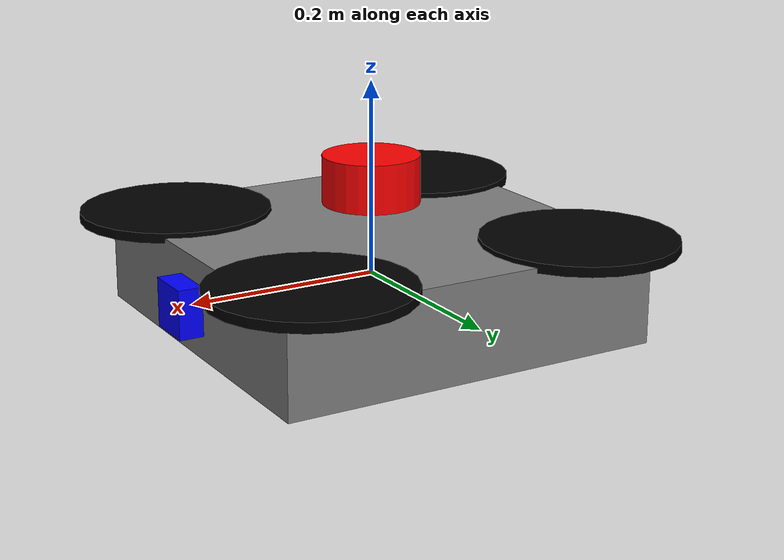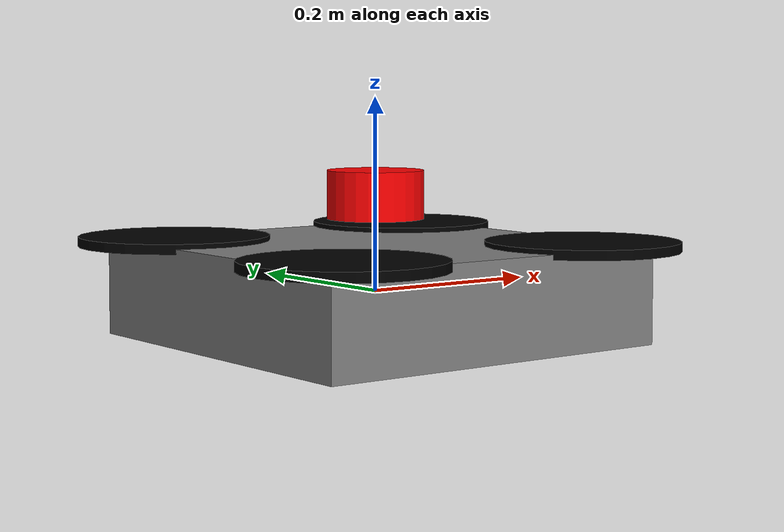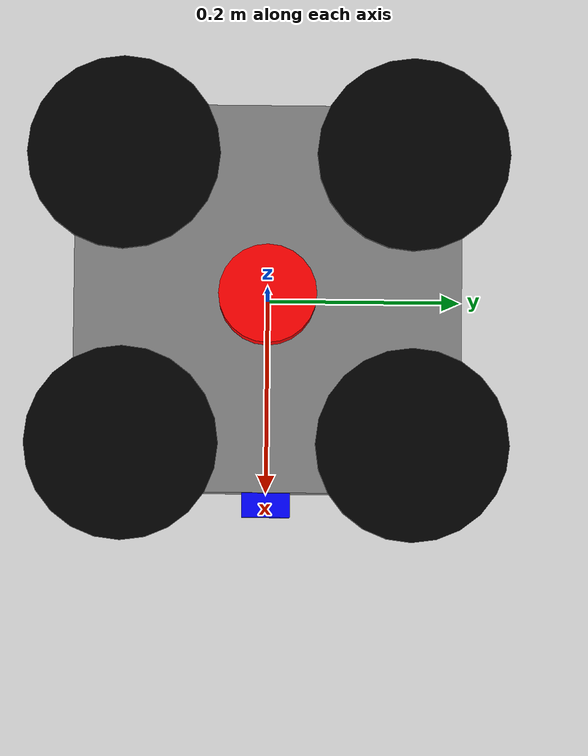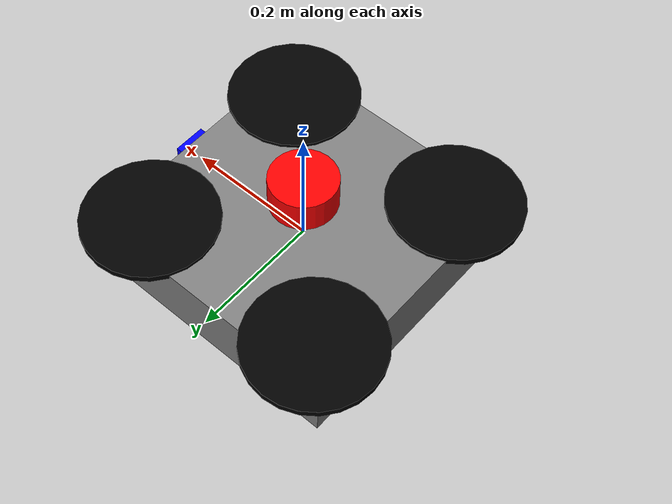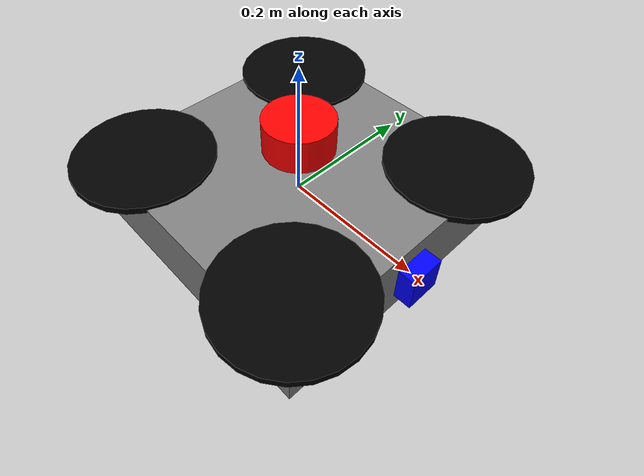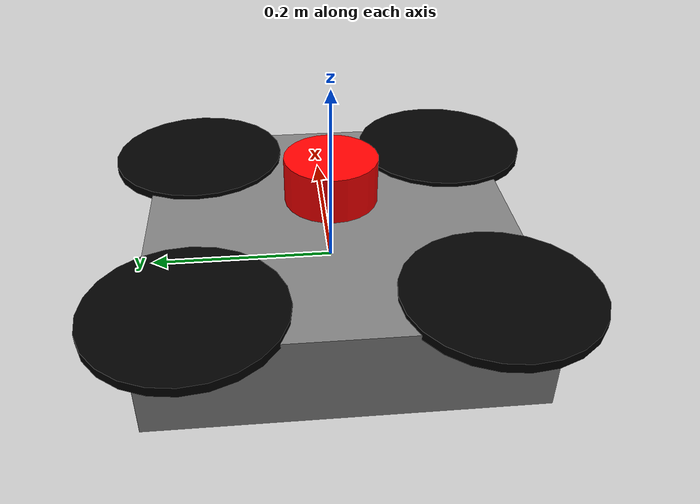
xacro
<?xml version="1.0"?>
<robot xmlns:xacro="http://www.ros.org/wiki/xacro" name="hermes_drone">

  <!-- Base Link -->
  <link name="base_link">
    <visual>
      <geometry>
        <box size="0.4 0.4 0.1"/>
      </geometry>
      <material name="grey">
        <color rgba="0.5 0.5 0.5 1"/>
      </material>
    </visual>
    <collision>
      <geometry>
        <box size="0.4 0.4 0.1"/>
      </geometry>
    </collision>
    <inertial>
      <mass value="1.5"/>
      <inertia ixx="0.03" ixy="0" ixz="0" iyy="0.03" iyz="0" izz="0.06"/>
    </inertial>
  </link>

  <!-- Rotors (Visual Only) -->
  <xacro:macro name="rotor" params="name x y">
    <link name="${name}">
      <visual>
        <geometry>
          <cylinder radius="0.1" length="0.01"/>
        </geometry>
        <material name="black">
          <color rgba="0 0 0 1"/>
        </material>
      </visual>
    </link>
    <joint name="${name}_joint" type="fixed">
      <parent link="base_link"/>
      <child link="${name}"/>
      <origin xyz="${x} ${y} 0.05"/>
    </joint>
  </xacro:macro>

  <xacro:rotor name="rotor_0" x="0.15" y="-0.15"/>
  <xacro:rotor name="rotor_1" x="0.15" y="0.15"/>
  <xacro:rotor name="rotor_2" x="-0.15" y="0.15"/>
  <xacro:rotor name="rotor_3" x="-0.15" y="-0.15"/>

  <!-- Camera Link -->
  <link name="camera_link">
    <visual>
      <geometry>
        <box size="0.05 0.05 0.05"/>
      </geometry>
      <material name="blue">
        <color rgba="0 0 1 1"/>
      </material>
    </visual>
  </link>
  <joint name="camera_joint" type="fixed">
    <parent link="base_link"/>
    <child link="camera_link"/>
    <origin xyz="0.2 0 0" rpy="0 0 0"/>
  </joint>

  <!-- Lidar Link -->
  <link name="lidar_link">
    <visual>
      <geometry>
        <cylinder radius="0.05" length="0.05"/>
      </geometry>
      <material name="red">
        <color rgba="1 0 0 1"/>
      </material>
    </visual>
  </link>
  <joint name="lidar_joint" type="fixed">
    <parent link="base_link"/>
    <child link="lidar_link"/>
    <origin xyz="0 0 0.1" rpy="0 0 0"/>
  </joint>

  <!-- Gazebo Plugins -->
  <gazebo>
    <plugin name="gazebo_ros_control" filename="libgazebo_ros_control.so">
      <robotNamespace>/</robotNamespace>
    </plugin>
  </gazebo>

</robot>
